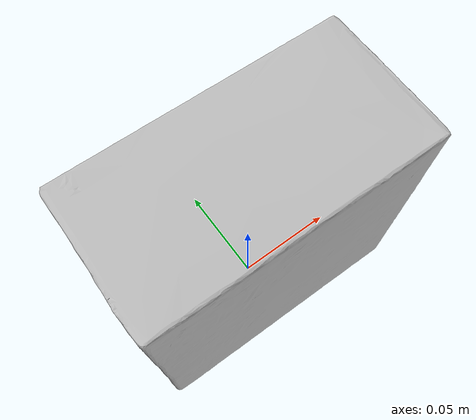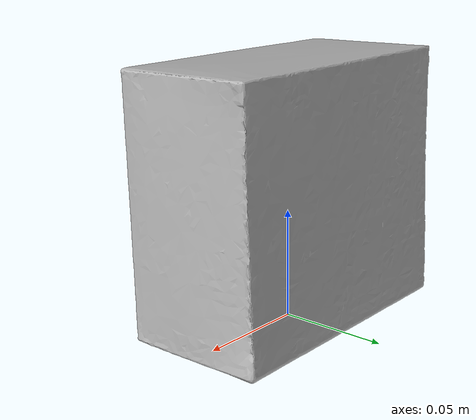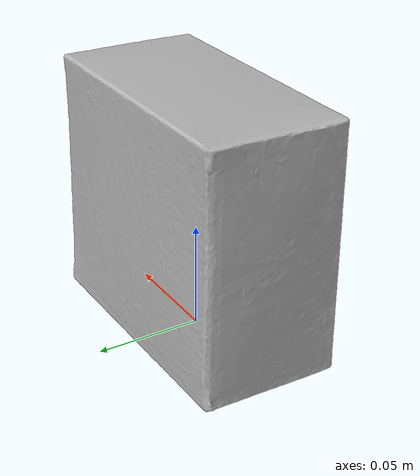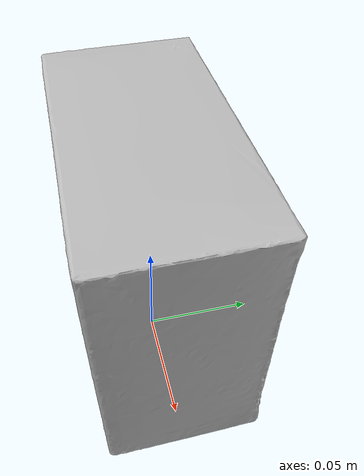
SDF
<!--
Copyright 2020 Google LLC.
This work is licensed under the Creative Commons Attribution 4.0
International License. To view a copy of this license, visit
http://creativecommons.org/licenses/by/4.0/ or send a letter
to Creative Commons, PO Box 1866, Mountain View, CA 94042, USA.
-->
<?xml version="1.0" ?>
<sdf version="1.6">
  <model name="Perricone_MD_The_Cold_Plasma_Face_Eyes_Duo">
    <link name="link_0">
      <visual name="visual">
        <geometry>
          <mesh>
            <uri>meshes/model.obj</uri>
          </mesh>
        </geometry>
      </visual>
      <collision name="collision_0">
        <geometry>
          <mesh>
            <uri>meshes/model.obj</uri>
          </mesh>
        </geometry>
      </collision>
    </link>
  </model>
</sdf>
